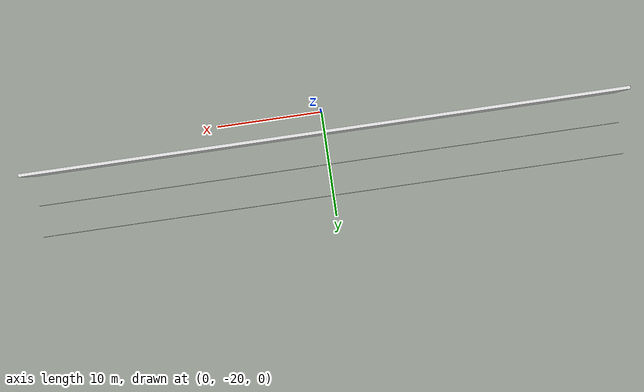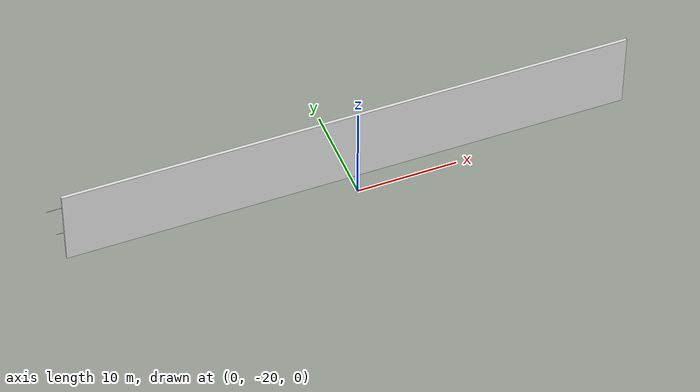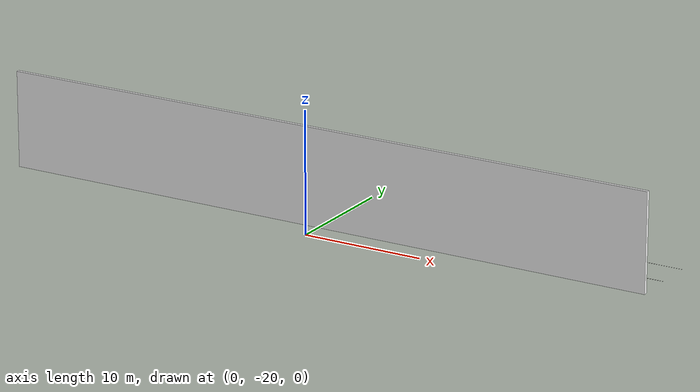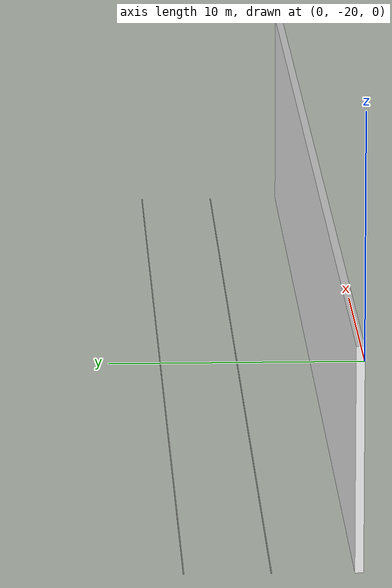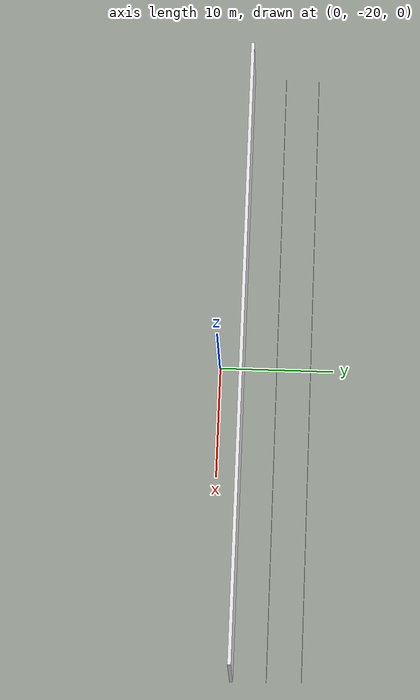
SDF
<sdf version="1.6">
 <world name="aws_industrial_warehouse">
  <model name="wall_south">
   <static>true</static>
   <pose>0 -18 4 0 0 0</pose>
   <link name="l">
    <collision name="c">
     <geometry><box><size>56 0.3 8</size></box></geometry>
     <surface><friction><ode><mu>1.0</mu><mu2>1.0</mu2></ode></friction></surface>
    </collision>
    <visual name="v">
     <geometry><box><size>56 0.3 8</size></box></geometry>
     <material><ambient>0.85 0.85 0.85 1</ambient><diffuse>0.90 0.90 0.90 1</diffuse></material>
    </visual>
   </link>
  </model>
  <model name="jnt_EW_0">
   <static>true</static>
   <pose>0 -18 0.001 0 0 0</pose>
   <link name="l">
    <visual name="v">
     <geometry><box><size>56.0 0.04 0.002</size></box></geometry>
     <material><ambient>0.58 0.58 0.57 1</ambient><diffuse>0.63 0.63 0.61 1</diffuse></material>
    </visual>
   </link>
  </model>
  <model name="jnt_EW_1">
   <static>true</static>
   <pose>0 -15 0.001 0 0 0</pose>
   <link name="l">
    <visual name="v">
     <geometry><box><size>56.0 0.04 0.002</size></box></geometry>
     <material><ambient>0.58 0.58 0.57 1</ambient><diffuse>0.63 0.63 0.61 1</diffuse></material>
    </visual>
   </link>
  </model>
  <model name="jnt_EW_2">
   <static>true</static>
   <pose>0 -12 0.001 0 0 0</pose>
   <link name="l">
    <visual name="v">
     <geometry><box><size>56.0 0.04 0.002</size></box></geometry>
     <material><ambient>0.58 0.58 0.57 1</ambient><diffuse>0.63 0.63 0.61 1</diffuse></material>
    </visual>
   </link>
  </model>
 </world>
</sdf>
